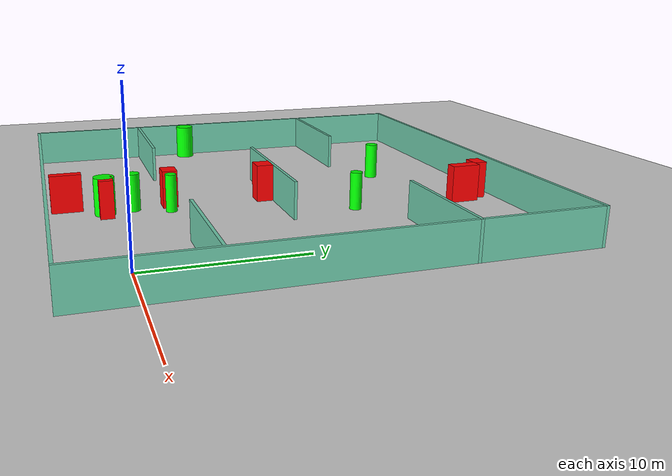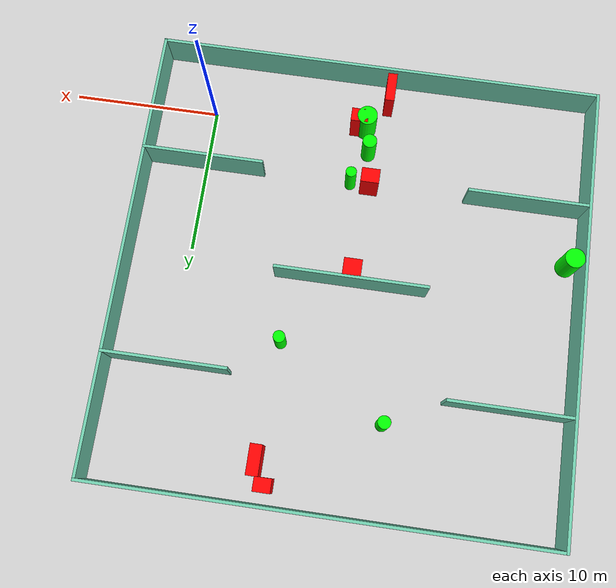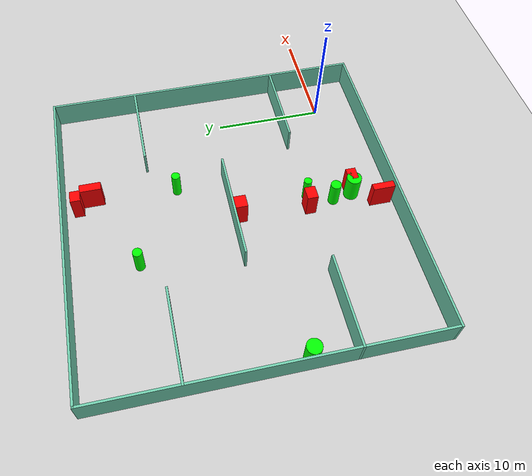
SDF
<sdf version="1.7">
 <world name="default">
  <light name="sun" type="directional">
   <pose>0 0 10 0 -0 0</pose>
   <diffuse>0.8 0.8 0.8 1</diffuse>
   <specular>0.2 0.2 0.2 1</specular>
   <attenuation>
    <range>1000</range>
    <constant>0.9</constant>
    <linear>0.01</linear>
    <quadratic>0.001</quadratic>
   </attenuation>
   <direction>-0.5 0.1 -0.9</direction>
   <spot><inner_angle>0</inner_angle><outer_angle>0</outer_angle><falloff>0</falloff></spot>
  </light>
  <model name="ground_plane">
   <static>1</static>
   <link name="link">
    <collision name="collision">
     <geometry><plane><normal>0 0 1</normal><size>100 100</size></plane></geometry>
     <surface>
      <contact><collide_bitmask>65535</collide_bitmask></contact>
      <friction><ode><mu>100</mu><mu2>50</mu2></ode></friction>
     </surface>
    </collision>
    <visual name="visual">
     <cast_shadows>0</cast_shadows>
     <geometry><plane><normal>0 0 1</normal><size>100 100</size></plane></geometry>
     <material>
      <script><uri>file://media/materials/scripts/gazebo.material</uri><name>Gazebo/Grey</name></script>
     </material>
    </visual>
   </link>
  </model>
  <gravity>0 0 -9.8</gravity>
  <magnetic_field>6e-06 2.3e-05 -4.2e-05</magnetic_field>
  <atmosphere type="adiabatic"/>
  <physics type="ode">
   <max_step_size>0.001</max_step_size>
   <real_time_factor>1</real_time_factor>
   <real_time_update_rate>1000</real_time_update_rate>
  </physics>
  <scene><ambient>0.4 0.4 0.4 1</ambient><background>0.7 0.7 0.7 1</background><shadows>1</shadows></scene>
  <spherical_coordinates>
   <surface_model>EARTH_WGS84</surface_model>
   <latitude_deg>0</latitude_deg>
   <longitude_deg>0</longitude_deg>
   <elevation>0</elevation>
   <heading_deg>0</heading_deg>
  </spherical_coordinates>
  <model name="my_base_walls">
   <link name="Wall_10">
    <collision name="Wall_10_Collision">
     <geometry><box><size>8.2 0.2 2.5</size></box></geometry>
     <pose>0 0 1.25 0 -0 0</pose>
    </collision>
    <visual name="Wall_10_Visual">
     <pose>0 0 1.25 0 -0 0</pose>
     <geometry><box><size>8.2 0.2 2.5</size></box></geometry>
     <material>
      <script><uri>file://media/materials/scripts/gazebo.material</uri><name>Gazebo/Grey</name></script>
      <ambient>0.435294 0.796078 0.67451 1</ambient>
     </material>
     <meta><layer>0</layer></meta>
    </visual>
    <pose>-11 -7 0 0 -0 0</pose>
   </link>
   <link name="Wall_12">
    <collision name="Wall_12_Collision">
     <geometry><box><size>8.2 0.2 2.5</size></box></geometry>
     <pose>0 0 1.25 0 -0 0</pose>
    </collision>
    <visual name="Wall_12_Visual">
     <pose>0 0 1.25 0 -0 0</pose>
     <geometry><box><size>8.2 0.2 2.5</size></box></geometry>
     <material>
      <script><uri>file://media/materials/scripts/gazebo.material</uri><name>Gazebo/Grey</name></script>
      <ambient>0.435294 0.796078 0.67451 1</ambient>
     </material>
     <meta><layer>0</layer></meta>
    </visual>
    <pose>-11 7 0 0 -0 0</pose>
   </link>
   <link name="Wall_14">
    <collision name="Wall_14_Collision">
     <geometry><box><size>8.2 0.2 2.5</size></box></geometry>
     <pose>0 0 1.25 0 -0 0</pose>
    </collision>
    <visual name="Wall_14_Visual">
     <pose>0 0 1.25 0 -0 0</pose>
     <geometry><box><size>8.2 0.2 2.5</size></box></geometry>
     <material>
      <script><uri>file://media/materials/scripts/gazebo.material</uri><name>Gazebo/Grey</name></script>
      <ambient>0.435294 0.796078 0.67451 1</ambient>
     </material>
     <meta><layer>0</layer></meta>
    </visual>
    <pose>11 7 0 0 -0 3.14159</pose>
   </link>
   <link name="Wall_16">
    <collision name="Wall_16_Collision">
     <geometry><box><size>10.2 0.2 2.5</size></box></geometry>
     <pose>0 0 1.25 0 -0 0</pose>
    </collision>
    <visual name="Wall_16_Visual">
     <pose>0 0 1.25 0 -0 0</pose>
     <geometry><box><size>10.2 0.2 2.5</size></box></geometry>
     <material>
      <script><uri>file://media/materials/scripts/gazebo.material</uri><name>Gazebo/Grey</name></script>
      <ambient>0.435294 0.796078 0.67451 1</ambient>
     </material>
     <meta><layer>0</layer></meta>
    </visual>
    <pose>0 0 0 0 -0 3.14159</pose>
   </link>
   <link name="Wall_2">
    <collision name="Wall_2_Collision">
     <geometry><box><size>30.2 0.2 2.5</size></box></geometry>
     <pose>0 0 1.25 0 -0 0</pose>
    </collision>
    <visual name="Wall_2_Visual">
     <pose>0 0 1.25 0 -0 0</pose>
     <geometry><box><size>30.2 0.2 2.5</size></box></geometry>
     <material>
      <script><uri>file://media/materials/scripts/gazebo.material</uri><name>Gazebo/Grey</name></script>
      <ambient>0.435294 0.796078 0.67451 1</ambient>
     </material>
     <meta><layer>0</layer></meta>
    </visual>
    <pose>0 -15 0 0 -0 3.14159</pose>
   </link>
   <link name="Wall_3">
    <collision name="Wall_3_Collision">
     <geometry><box><size>30.2 0.2 2.5</size></box></geometry>
     <pose>0 0 1.25 0 -0 0</pose>
    </collision>
    <visual name="Wall_3_Visual">
     <pose>0 0 1.25 0 -0 0</pose>
     <geometry><box><size>30.2 0.2 2.5</size></box></geometry>
     <material>
      <script><uri>file://media/materials/scripts/gazebo.material</uri><name>Gazebo/Grey</name></script>
      <ambient>0.435294 0.796078 0.67451 1</ambient>
     </material>
     <meta><layer>0</layer></meta>
    </visual>
    <pose>-15 0 0 0 -0 1.5708</pose>
   </link>
   <link name="Wall_4">
    <collision name="Wall_4_Collision">
     <geometry><box><size>30.2 0.2 2.5</size></box></geometry>
     <pose>0 0 1.25 0 -0 0</pose>
    </collision>
    <visual name="Wall_4_Visual">
     <pose>0 0 1.25 0 -0 0</pose>
     <geometry><box><size>30.2 0.2 2.5</size></box></geometry>
     <material>
      <script><uri>file://media/materials/scripts/gazebo.material</uri><name>Gazebo/Grey</name></script>
      <ambient>0.435294 0.796078 0.67451 1</ambient>
     </material>
     <meta><layer>0</layer></meta>
    </visual>
    <pose>0 15 0 0 -0 0</pose>
   </link>
   <link name="Wall_6">
    <collision name="Wall_6_Collision">
     <geometry><box><size>30.2 0.2 2.5</size></box></geometry>
     <pose>0 0 1.25 0 -0 0</pose>
    </collision>
    <visual name="Wall_6_Visual">
     <pose>0 0 1.25 0 -0 0</pose>
     <geometry><box><size>30.2 0.2 2.5</size></box></geometry>
     <material>
      <script><uri>file://media/materials/scripts/gazebo.material</uri><name>Gazebo/Grey</name></script>
      <ambient>0.435294 0.796078 0.67451 1</ambient>
     </material>
     <meta><layer>0</layer></meta>
    </visual>
    <pose>15 0 0 0 -0 1.5708</pose>
   </link>
   <link name="Wall_8">
    <collision name="Wall_8_Collision">
     <geometry><box><size>8.2 0.2 2.5</size></box></geometry>
     <pose>0 0 1.25 0 -0 0</pose>
    </collision>
    <visual name="Wall_8_Visual">
     <pose>0 0 1.25 0 -0 0</pose>
     <geometry><box><size>8.2 0.2 2.5</size></box></geometry>
     <material>
      <script><uri>file://media/materials/scripts/gazebo.material</uri><name>Gazebo/Grey</name></script>
      <ambient>0.435294 0.796078 0.67451 1</ambient>
     </material>
     <meta><layer>0</layer></meta>
    </visual>
    <pose>11 -7 0 0 -0 3.14159</pose>
   </link>
   <static>1</static>
   <pose>-11 11 0 0 -0 0</pose>
  </model>
  <model name="cylinder1">
   <static>1</static>
   <link name="link">
    <inertial>
     <mass>1</mass>
     <inertia><ixx>0.5</ixx><ixy>0</ixy><ixz>0</ixz><iyy>0.5</iyy><iyz>0</iyz><izz>1</izz></inertia>
    </inertial>
    <collision name="collision">
     <geometry><cylinder><radius>0.48124068988142643</radius><length>2.5</length></cylinder></geometry>
    </collision>
    <visual name="visual">
     <geometry><cylinder><radius>0.48124068988142643</radius><length>2.5</length></cylinder></geometry>
     <material>
      <ambient>0 1 0 1</ambient>
      <diffuse>0 1 0 1</diffuse>
      <specular>0.1 0.1 0.1 1</specular>
      <emissive>0 0 0 0</emissive>
     </material>
    </visual>
   </link>
   <pose>-10.994165417673225 1.4981613908584137 1.25 0 0 0</pose>
  </model>
  <model name="cylinder2">
   <static>1</static>
   <link name="link">
    <inertial>
     <mass>1</mass>
     <inertia><ixx>0.5</ixx><ixy>0</ixy><ixz>0</ixz><iyy>0.5</iyy><iyz>0</iyz><izz>1</izz></inertia>
    </inertial>
    <collision name="collision">
     <geometry><cylinder><radius>0.6745778072009411</radius><length>2.5</length></cylinder></geometry>
    </collision>
    <visual name="visual">
     <geometry><cylinder><radius>0.6745778072009411</radius><length>2.5</length></cylinder></geometry>
     <material>
      <ambient>0 1 0 1</ambient>
      <diffuse>0 1 0 1</diffuse>
      <specular>0.1 0.1 0.1 1</specular>
      <emissive>0 0 0 0</emissive>
     </material>
    </visual>
   </link>
   <pose>-10.610426522741285 -0.3415390012962254 1.25 0 0 0</pose>
  </model>
  <model name="cylinder3">
   <static>1</static>
   <link name="link">
    <inertial>
     <mass>1</mass>
     <inertia><ixx>0.5</ixx><ixy>0</ixy><ixz>0</ixz><iyy>0.5</iyy><iyz>0</iyz><izz>1</izz></inertia>
    </inertial>
    <collision name="collision">
     <geometry><cylinder><radius>0.3920158161954476</radius><length>2.5</length></cylinder></geometry>
    </collision>
    <visual name="visual">
     <geometry><cylinder><radius>0.3920158161954476</radius><length>2.5</length></cylinder></geometry>
     <material>
      <ambient>0 1 0 1</ambient>
      <diffuse>0 1 0 1</diffuse>
      <specular>0.1 0.1 0.1 1</specular>
      <emissive>0 0 0 0</emissive>
     </material>
    </visual>
   </link>
   <pose>-6.997440873402049 15.545663605862085 1.25 0 0 0</pose>
  </model>
  <model name="cylinder4">
   <static>1</static>
   <link name="link">
    <inertial>
     <mass>1</mass>
     <inertia><ixx>0.5</ixx><ixy>0</ixy><ixz>0</ixz><iyy>0.5</iyy><iyz>0</iyz><izz>1</izz></inertia>
    </inertial>
    <collision name="collision">
     <geometry><cylinder><radius>0.6623355011469636</radius><length>2.5</length></cylinder></geometry>
    </collision>
    <visual name="visual">
     <geometry><cylinder><radius>0.6623355011469636</radius><length>2.5</length></cylinder></geometry>
     <material>
      <ambient>0 1 0 1</ambient>
      <diffuse>0 1 0 1</diffuse>
      <specular>0.1 0.1 0.1 1</specular>
      <emissive>0 0 0 0</emissive>
     </material>
    </visual>
   </link>
   <pose>-25.22467489056267 7.725090827694974 1.25 0 0 0</pose>
  </model>
  <model name="cylinder5">
   <static>1</static>
   <link name="link">
    <inertial>
     <mass>1</mass>
     <inertia><ixx>0.5</ixx><ixy>0</ixy><ixz>0</ixz><iyy>0.5</iyy><iyz>0</iyz><izz>1</izz></inertia>
    </inertial>
    <collision name="collision">
     <geometry><cylinder><radius>0.4245486738880227</radius><length>2.5</length></cylinder></geometry>
    </collision>
    <visual name="visual">
     <geometry><cylinder><radius>0.4245486738880227</radius><length>2.5</length></cylinder></geometry>
     <material>
      <ambient>0 1 0 1</ambient>
      <diffuse>0 1 0 1</diffuse>
      <specular>0.1 0.1 0.1 1</specular>
      <emissive>0 0 0 0</emissive>
     </material>
    </visual>
   </link>
   <pose>-14.253076977363452 19.921740167868286 1.25 0 0 0</pose>
  </model>
  <model name="cylinder6">
   <static>1</static>
   <link name="link">
    <inertial>
     <mass>1</mass>
     <inertia><ixx>0.5</ixx><ixy>0</ixy><ixz>0</ixz><iyy>0.5</iyy><iyz>0</iyz><izz>1</izz></inertia>
    </inertial>
    <collision name="collision">
     <geometry><cylinder><radius>0.3637221122222112</radius><length>2.5</length></cylinder></geometry>
    </collision>
    <visual name="visual">
     <geometry><cylinder><radius>0.3637221122222112</radius><length>2.5</length></cylinder></geometry>
     <material>
      <ambient>0 1 0 1</ambient>
      <diffuse>0 1 0 1</diffuse>
      <specular>0.1 0.1 0.1 1</specular>
      <emissive>0 0 0 0</emissive>
     </material>
    </visual>
   </link>
   <pose>-10.047799734626274 3.866766197436867 1.25 0 0 0</pose>
  </model>
  <model name="box1">
   <static>1</static>
   <link name="link">
    <inertial>
     <mass>1</mass>
     <inertia><ixx>0.083</ixx><ixy>0</ixy><ixz>0</ixz><iyy>0.083</iyy><iyz>0</iyz><izz>0.083</izz></inertia>
    </inertial>
    <collision name="collision">
     <geometry><box><size>1.237400937320602 0.9829877141402342 2.5</size></box></geometry>
    </collision>
    <visual name="visual">
     <geometry><box><size>1.237400937320602 0.9829877141402342 2.5</size></box></geometry>
     <material>
      <ambient>1 0 0 1</ambient>
      <diffuse>1 0 0 1</diffuse>
      <specular>0.1 0.1 0.1 1</specular>
      <emissive>0 0 0 0</emissive>
     </material>
    </visual>
    <sensor name="my_contact" type="contact">
     <contact><collision>box_collision</collision><topic>__default_topic__</topic></contact>
    </sensor>
   </link>
   <pose>-11.350993021010598 3.9385310224540593 1.25 0 0 0</pose>
  </model>
  <model name="box2">
   <static>1</static>
   <link name="link">
    <inertial>
     <mass>1</mass>
     <inertia><ixx>0.083</ixx><ixy>0</ixy><ixz>0</ixz><iyy>0.083</iyy><iyz>0</iyz><izz>0.083</izz></inertia>
    </inertial>
    <collision name="collision">
     <geometry><box><size>1.1566266444450108 0.9107832138132226 2.5</size></box></geometry>
    </collision>
    <visual name="visual">
     <geometry><box><size>1.1566266444450108 0.9107832138132226 2.5</size></box></geometry>
     <material>
      <ambient>1 0 0 1</ambient>
      <diffuse>1 0 0 1</diffuse>
      <specular>0.1 0.1 0.1 1</specular>
      <emissive>0 0 0 0</emissive>
     </material>
    </visual>
    <sensor name="my_contact" type="contact">
     <contact><collision>box_collision</collision><topic>__default_topic__</topic></contact>
    </sensor>
   </link>
   <pose>-10.09223792699044 -0.2928668323617969 1.25 0 0 0</pose>
  </model>
  <model name="box3">
   <static>1</static>
   <link name="link">
    <inertial>
     <mass>1</mass>
     <inertia><ixx>0.083</ixx><ixy>0</ixy><ixz>0</ixz><iyy>0.083</iyy><iyz>0</iyz><izz>0.083</izz></inertia>
    </inertial>
    <collision name="collision">
     <geometry><box><size>1.1147099802563667 0.9091353180876854 2.5</size></box></geometry>
    </collision>
    <visual name="visual">
     <geometry><box><size>1.1147099802563667 0.9091353180876854 2.5</size></box></geometry>
     <material>
      <ambient>1 0 0 1</ambient>
      <diffuse>1 0 0 1</diffuse>
      <specular>0.1 0.1 0.1 1</specular>
      <emissive>0 0 0 0</emissive>
     </material>
    </visual>
    <sensor name="my_contact" type="contact">
     <contact><collision>box_collision</collision><topic>__default_topic__</topic></contact>
    </sensor>
   </link>
   <pose>-7.381094001293542 24.69374218650577 1.25 0 0 0</pose>
  </model>
  <model name="box4">
   <static>1</static>
   <link name="link">
    <inertial>
     <mass>1</mass>
     <inertia><ixx>0.083</ixx><ixy>0</ixy><ixz>0</ixz><iyy>0.083</iyy><iyz>0</iyz><izz>0.083</izz></inertia>
    </inertial>
    <collision name="collision">
     <geometry><box><size>1.2147186606271494 1.1257300841599518 2.5</size></box></geometry>
    </collision>
    <visual name="visual">
     <geometry><box><size>1.2147186606271494 1.1257300841599518 2.5</size></box></geometry>
     <material>
      <ambient>1 0 0 1</ambient>
      <diffuse>1 0 0 1</diffuse>
      <specular>0.1 0.1 0.1 1</specular>
      <emissive>0 0 0 0</emissive>
     </material>
    </visual>
    <sensor name="my_contact" type="contact">
     <contact><collision>box_collision</collision><topic>__default_topic__</topic></contact>
    </sensor>
   </link>
   <pose>-10.992364540275826 10.355789450873285 1.25 0 0 0</pose>
  </model>
  <model name="box5">
   <static>1</static>
   <link name="link">
    <inertial>
     <mass>1</mass>
     <inertia><ixx>0.083</ixx><ixy>0</ixy><ixz>0</ixz><iyy>0.083</iyy><iyz>0</iyz><izz>0.083</izz></inertia>
    </inertial>
    <collision name="collision">
     <geometry><box><size>0.7899264422056707 1.945838375588604 2.5</size></box></geometry>
    </collision>
    <visual name="visual">
     <geometry><box><size>0.7899264422056707 1.945838375588604 2.5</size></box></geometry>
     <material>
      <ambient>1 0 0 1</ambient>
      <diffuse>1 0 0 1</diffuse>
      <specular>0.1 0.1 0.1 1</specular>
      <emissive>0 0 0 0</emissive>
     </material>
    </visual>
    <sensor name="my_contact" type="contact">
     <contact><collision>box_collision</collision><topic>__default_topic__</topic></contact>
    </sensor>
   </link>
   <pose>-6.65748490982347 23.287660879379438 1.25 0 0 0</pose>
  </model>
  <model name="box6">
   <static>1</static>
   <link name="link">
    <inertial>
     <mass>1</mass>
     <inertia><ixx>0.083</ixx><ixy>0</ixy><ixz>0</ixz><iyy>0.083</iyy><iyz>0</iyz><izz>0.083</izz></inertia>
    </inertial>
    <collision name="collision">
     <geometry><box><size>0.6357888655974119 2.0146175314421866 2.5</size></box></geometry>
    </collision>
    <visual name="visual">
     <geometry><box><size>0.6357888655974119 2.0146175314421866 2.5</size></box></geometry>
     <material>
      <ambient>1 0 0 1</ambient>
      <diffuse>1 0 0 1</diffuse>
      <specular>0.1 0.1 0.1 1</specular>
      <emissive>0 0 0 0</emissive>
     </material>
    </visual>
    <sensor name="my_contact" type="contact">
     <contact><collision>box_collision</collision><topic>__default_topic__</topic></contact>
    </sensor>
   </link>
   <pose>-11.951790193036631 -2.6636969849883987 1.25 0 0 0</pose>
  </model>
 </world>
</sdf>
